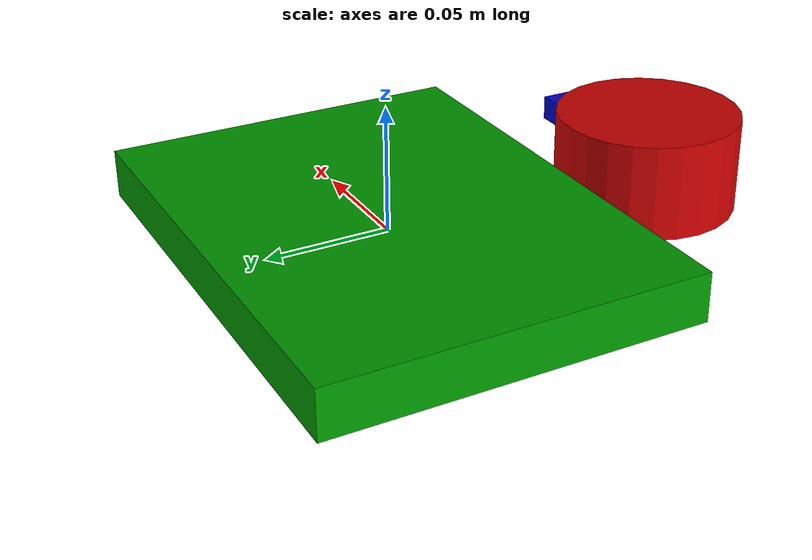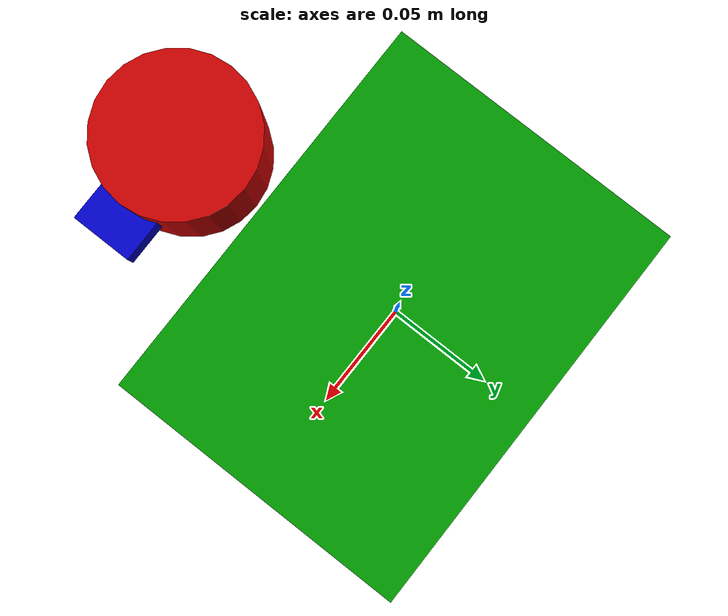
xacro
<?xml version="1.0"?>
<robot name="jig">

  <!-- BASE (Jetson Orin Nano) -->
  <link name="base_link">
    <visual>
      <origin xyz="0 0 0" rpy="0 0 0"/>
      <geometry>
        <box size="0.2 0.15 0.02"/>
      </geometry>
      <material name="green">
        <color rgba="0.0 0.6 0.0 1.0"/>
      </material>
    </visual>
  </link>

  <!-- IMU LINK (Spresense) -->
  <link name="imu_link">
    <visual>
      <origin xyz="0 0 0" rpy="0 0 0"/>
      <geometry>
        <box size="0.03 0.03 0.01"/>
      </geometry>
      <material name="blue">
        <color rgba="0.0 0.0 0.8 1.0"/>
      </material>
    </visual>
  </link>

  <!-- LIDAR LINK (MID360) -->
  <link name="lidar_link">
    <visual>
      <origin xyz="0 0 0" rpy="0 0 0"/>
      <geometry>
        <cylinder radius="0.038" length="0.04"/>
      </geometry>
      <material name="red">
        <color rgba="0.8 0.0 0.0 1.0"/>
      </material>
    </visual>
  </link>

  <!-- BASE to IMU -->
  <joint name="base_to_imu" type="fixed">
    <parent link="base_link"/>
    <child link="imu_link"/>
    <origin xyz="0.04 -0.12 0.01" rpy="0 0 0"/>
  </joint>

  <!-- BASE to LIDAR -->
  <joint name="base_to_lidar" type="fixed">
    <parent link="base_link"/>
    <child link="lidar_link"/>
    <origin xyz="-0.00 -0.12 0.005" rpy="0 0 0"/>
  </joint>

</robot>
